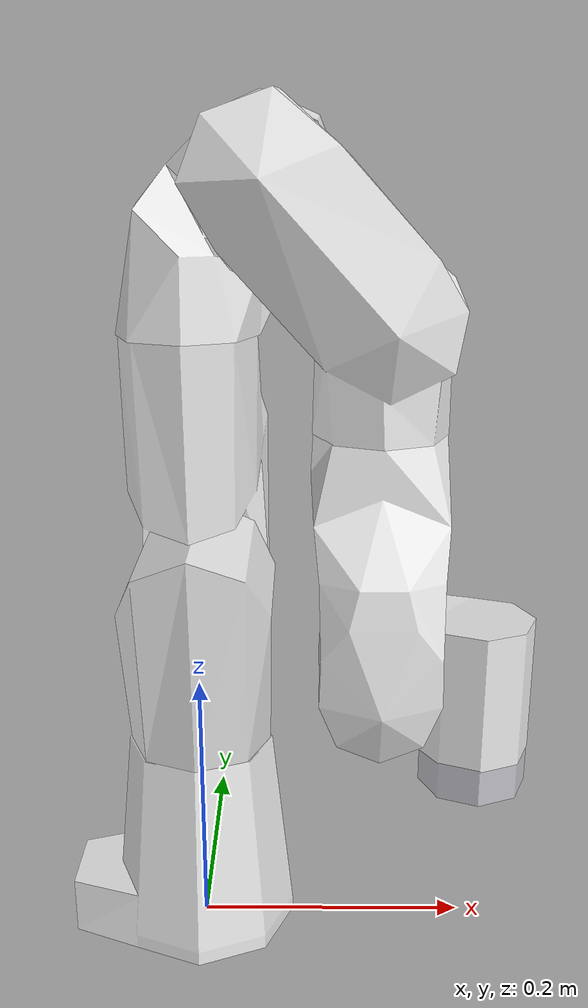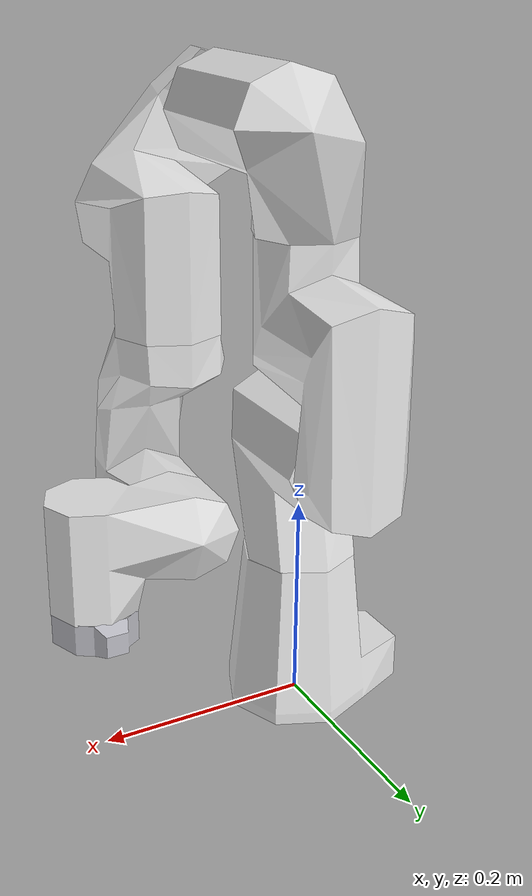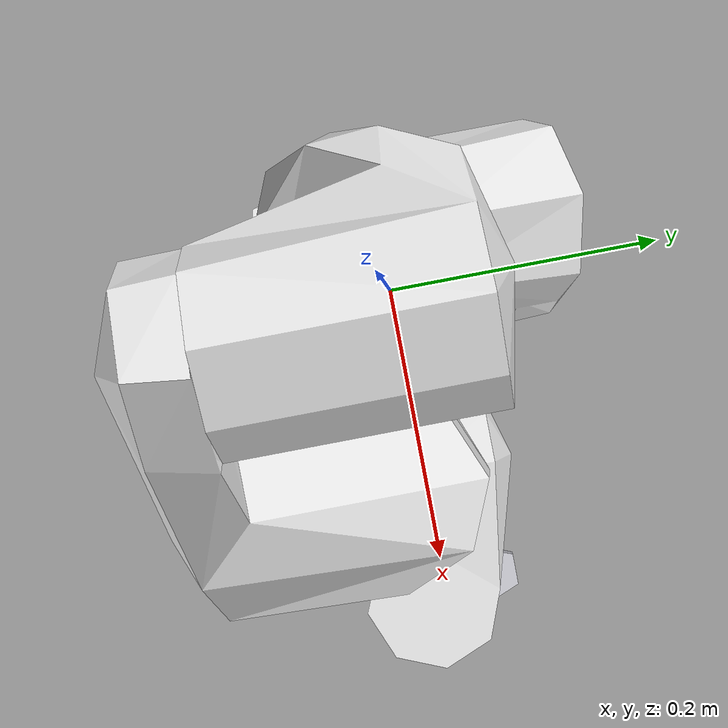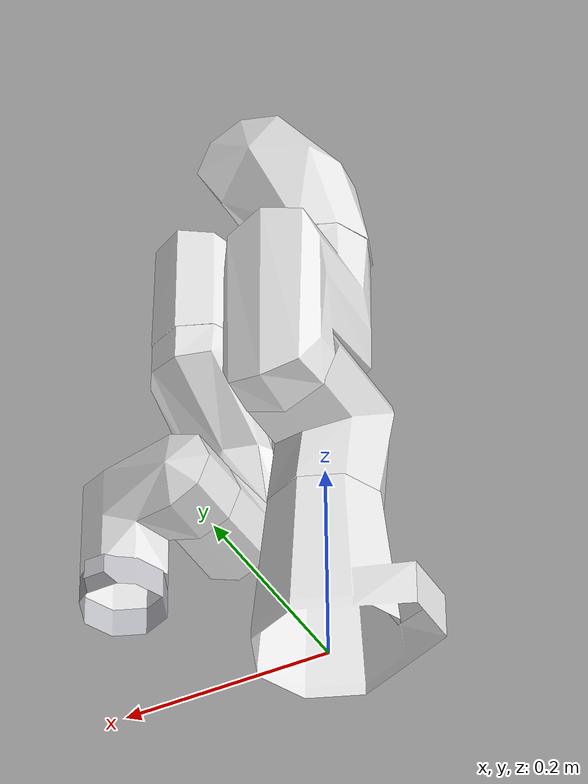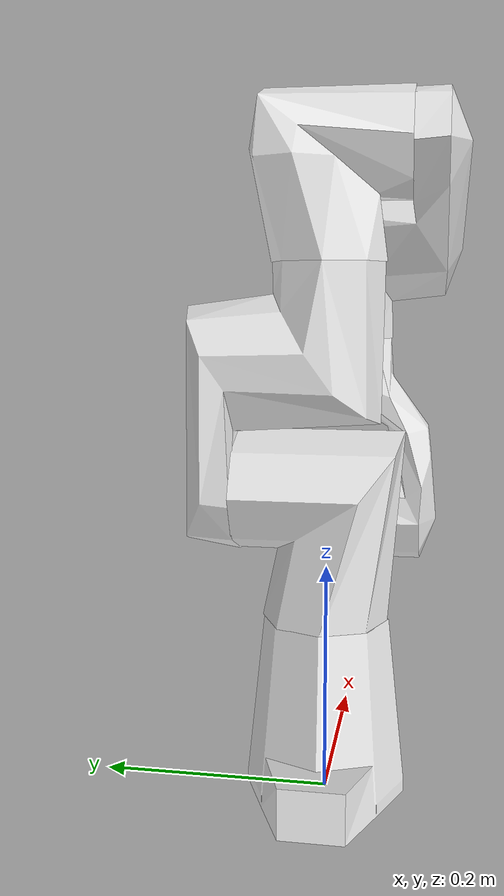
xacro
<?xml version='1.0' encoding='utf-8'?>
<robot xmlns:xacro="http://ros.org/wiki/xacro" name="xarm7">
  <xacro:arg name="prefix" default=""/>
  <xacro:arg name="ros_namespace" default="xarm"/>
  <xacro:arg name="limited" default="false"/>
  <xacro:arg name="effort_control" default="false"/>
  <xacro:arg name="velocity_control" default="false"/>

  <xacro:arg name="add_other_geometry" default="false"/>
  <xacro:arg name="geometry_type" default="box"/>
  <xacro:arg name="geometry_mass" default="0.1"/>
  <xacro:arg name="geometry_height" default="0.1"/>
  <xacro:arg name="geometry_radius" default="0.1"/>
  <xacro:arg name="geometry_length" default="0.1"/>
  <xacro:arg name="geometry_width" default="0.1"/>
  <xacro:arg name="geometry_mesh_filename" default=""/>
  <xacro:arg name="geometry_mesh_origin_xyz" default="0 0 0"/>
  <xacro:arg name="geometry_mesh_origin_rpy" default="0 0 0"/>
  <xacro:arg name="geometry_mesh_tcp_xyz" default="0 0 0"/>
  <xacro:arg name="geometry_mesh_tcp_rpy" default="0 0 0"/>

  <xacro:arg name="add_realsense_d435i" default="false"/>

  <!-- load xarm7 robot -->
  <xacro:include filename="$(find horti_description)/urdf/xarm7_robot_macro.xacro" />
  <xacro:xarm7_robot prefix="$(arg prefix)" namespace="$(arg ros_namespace)" limited="$(arg limited)"
    effort_control="$(arg effort_control)" velocity_control="$(arg velocity_control)"
    rs_d435i="$(arg add_realsense_d435i)"
    add_other_geometry="$(arg add_other_geometry)"
    geometry_type="$(arg geometry_type)" geometry_mass="$(arg geometry_mass)"
    geometry_height="$(arg geometry_height)" geometry_radius="$(arg geometry_radius)"
    geometry_length="$(arg geometry_length)" geometry_width="$(arg geometry_width)"
    geometry_mesh_filename="$(arg geometry_mesh_filename)"
    geometry_mesh_origin_xyz="$(arg geometry_mesh_origin_xyz)" geometry_mesh_origin_rpy="$(arg geometry_mesh_origin_rpy)"
    geometry_mesh_tcp_xyz="$(arg geometry_mesh_tcp_xyz)" geometry_mesh_tcp_rpy="$(arg geometry_mesh_tcp_rpy)" />

</robot>

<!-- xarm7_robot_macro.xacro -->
<robot xmlns:xacro="http://ros.org/wiki/xacro" name="xarm7" >
  <xacro:macro name="xarm7_robot" params="prefix:='' namespace:='xarm' limited:='false' effort_control:='false'
    velocity_control:='false' attach_to:='world' xyz:='0 0 0' rpy:='0 0 0' load_gazebo_plugin:='false' rs_d435i:='false'
    add_other_geometry:='false'
    geometry_type:='box' geometry_mass:='0.1'
    geometry_radius:='0.1' geometry_height:='0.1'
    geometry_length:='0.1' geometry_width:='0.1'
    geometry_mesh_filename:=''
    geometry_mesh_origin_xyz:='0 0 0'
    geometry_mesh_origin_rpy:='0 0 0'
    geometry_mesh_tcp_xyz:='0 0 0'
    geometry_mesh_tcp_rpy:='0 0 0' ">

    <!-- xarm7 -->
    <xacro:include filename="$(find horti_description)/urdf/inc/xarm/xarm7.urdf.xacro" />
    <xacro:include filename="$(find horti_description)/urdf/inc/xarm/xarm7.transmission.xacro" />
    <xacro:include filename="$(find horti_description)/urdf/inc/xarm/xarm7.gazebo.xacro" />

    <!-- gazebo_plugin -->
   <xacro:if value="${load_gazebo_plugin}">
    <xacro:include filename="$(find horti_description)/urdf/common.gazebo.xacro" />
    <xacro:gazebo_ros_control_plugin namespace="${namespace}"/>
    </xacro:if>

    <!-- add one world link if no 'attach_to' specified  -->
    <xacro:if value="${attach_to == 'world'}">
      <link name="world" />
    </xacro:if>

    <joint name="${prefix}world_joint" type="fixed">
      <parent link="${attach_to}" />
      <child link = "${prefix}link_base" />
      <origin xyz="${xyz}" rpy="${rpy}" />
    </joint>

    <xacro:if value="${limited}">
      <xacro:xarm7_urdf prefix="${prefix}"
        joint1_lower_limit="${-pi*0.99}" joint1_upper_limit="${pi*0.99}"
        joint2_lower_limit="${-2.18}" joint2_upper_limit="${2.18}"
        joint3_lower_limit="${-pi*0.99}" joint3_upper_limit="${pi*0.99}"
        joint4_lower_limit="${-0.11}" joint4_upper_limit="${pi*0.99}"
        joint5_lower_limit="${-pi*0.99}" joint5_upper_limit="${pi*0.99}"
        joint6_lower_limit="${-1.75}" joint6_upper_limit="${pi*0.99}"
        joint7_lower_limit="${-pi*0.99}" joint7_upper_limit="${pi*0.99}"
        rs_d435i="${rs_d435i}"/>
    </xacro:if>
    <xacro:unless value="${limited}">
      <xacro:xarm7_urdf prefix="${prefix}" rs_d435i="${rs_d435i}"/>
    </xacro:unless>

    <xacro:xarm7_transmission prefix="${prefix}" hard_interface="$(eval 'EffortJointInterface' if ${effort_control} else 'VelocityJointInterface' if ${velocity_control} else 'PositionJointInterface')" />

    <xacro:xarm7_gazebo prefix="${prefix}" />

    <xacro:if value="${add_other_geometry}">
      <xacro:include filename="$(find horti_description)/urdf/inc/xarm/other_geometry.urdf.xacro" />
      <xacro:other_geometry prefix="${prefix}" attach_to="${prefix}link_eef"
        geometry_type="${geometry_type}" geometry_mass="${geometry_mass}"
        geometry_height="${geometry_height}" geometry_radius="${geometry_radius}"
        geometry_length="${geometry_length}" geometry_width="${geometry_width}"
        geometry_mesh_filename="${geometry_mesh_filename}"
        geometry_mesh_origin_xyz="${geometry_mesh_origin_xyz}" geometry_mesh_origin_rpy="${geometry_mesh_origin_rpy}"
        geometry_mesh_tcp_xyz="${geometry_mesh_tcp_xyz}" geometry_mesh_tcp_rpy="${geometry_mesh_tcp_rpy}"
      />
    </xacro:if>
  </xacro:macro>

</robot>

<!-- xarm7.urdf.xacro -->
<robot xmlns:xacro="http://ros.org/wiki/xacro">

    <xacro:property name="collision_type" value="reduced_mesh_manual_performance" />
    <!-- Values: reduced_mesh_auto, reduced_mesh_manual_quality, reduced_mesh_manual_performance, spheres, shapes, capsules-->

  <xacro:macro name="xarm7_urdf" params="prefix
    joint1_lower_limit:=${-2.0*pi}  joint1_upper_limit:=${2.0*pi}
    joint2_lower_limit:=${-2.059}  joint2_upper_limit:=${2.0944}
    joint3_lower_limit:=${-2.0*pi}  joint3_upper_limit:=${2.0*pi}
    joint4_lower_limit:=${-0.19198}  joint4_upper_limit:=${3.927}
    joint5_lower_limit:=${-2.0*pi}  joint5_upper_limit:=${2.0*pi}
    joint6_lower_limit:=${-1.69297}  joint6_upper_limit:=${pi}
    joint7_lower_limit:=${-2.0*pi}  joint7_upper_limit:=${2.0*pi}
    rs_d435i:=false">

    <link
    name="${prefix}link_base">
    <inertial>
      <origin
        xyz="-0.021131 -0.0016302 0.056488"
        rpy="0 0 0" />
      <mass
        value="2.612" />
      <inertia
        ixx="0.0030595"
        ixy="0.00012259"
        ixz="-0.00062705"
        iyy="0.0037783"
        iyz="0.00027023"
        izz="0.0020125" />
    </inertial>
    <visual>
      <origin
        xyz="0 0 0"
        rpy="0 0 0" />
      <geometry>
        <mesh filename="package://horti_description/meshes/xarm7/visual/link_base.STL" />
      </geometry>
      <material name="White" />
    </visual>

    <xacro:if value="${collision_type == 'reduced_mesh_auto'}">
        <collision>
            <geometry>
                <mesh filename="package://horti_description/meshes/xarm7/collision/link_base_collision.STL" />
            </geometry>
        </collision>
    </xacro:if>

    <xacro:if value="${collision_type == 'reduced_mesh_manual_quality'}">
        <collision>
            <geometry>
                <mesh filename="package://horti_description/meshes/xarm7/collision_manual_quality/link_base_collision.STL" />
            </geometry>
        </collision>
    </xacro:if>

    <xacro:if value="${collision_type == 'reduced_mesh_manual_performance'}">
        <collision>
            <geometry>
                <mesh filename="package://horti_description/meshes/xarm7/collision_manual_performance/link_base_collision.STL" />
            </geometry>
        </collision>
    </xacro:if>

    <xacro:if value="${collision_type == 'spheres'}">
        <collision>
            <origin xyz="0.0 0.0 0.05" rpy="0 0 0" />
            <geometry>
                <sphere radius="0.05"/>
            </geometry>
        </collision>

        <collision>
            <origin xyz="0.0 0.0 0.15" rpy="0 0 0" />
            <geometry>
                <sphere radius="0.05"/>
            </geometry>
        </collision>

        <collision>
            <origin xyz="0.0 0.0 0.25" rpy="0 0 0" />
            <geometry>
                <sphere radius="0.05"/>
            </geometry>
        </collision>
    </xacro:if>

    <xacro:if value="${collision_type == 'shapes'}">
        <collision>
            <origin rpy="0.0 0.0 0.0" xyz="0.0 0.0 0.08" />
            <geometry>
                <cylinder length="0.16" radius="0.07" />
            </geometry>
        </collision>
        <collision>
            <origin rpy="0.0 1.57 0.0" xyz="-0.09 0.0 0.03" />
            <geometry>
                <cylinder length="0.05" radius="0.05" />
            </geometry>
        </collision>
    </xacro:if>

    <xacro:if value="${collision_type == 'capsules'}">
        <xacro:capsule-collision e1="-0.000213989 -2.89319e-05 0.0883932" e2="-0.0129459 0.000484928 0.0317038" rad="0.081895279580145044" len="0.058103800326894536" rpy="-3.13253 -0.220917 3.05991" mid="-0.00657996 0.000227998 0.0600485" />
    </xacro:if>

  </link>
  <link
    name="${prefix}link1">
    <inertial>
      <origin
        xyz="0.00013 0.0301 -0.012"
        rpy="0 0 0" />
      <mass
        value="2.459" />
      <inertia
        ixx="0.005795"
        ixy="-1.078E-05"
        ixz="-2.63E-05"
        iyy="0.004969"
        iyz="0.000911"
        izz="0.003428" />
    </inertial>
    <visual>
      <origin
        xyz="0 0 0"
        rpy="0 0 0" />
      <geometry>
        <mesh
          filename="package://horti_description/meshes/xarm7/visual/link1.STL" />
      </geometry>
      <material name="White" />
    </visual>

    <xacro:if value="${collision_type == 'reduced_mesh_auto'}">
        <collision>
            <geometry>
                <mesh filename="package://horti_description/meshes/xarm7/collision/link1_collision.STL" />
            </geometry>
        </collision>
    </xacro:if>

    <xacro:if value="${collision_type == 'reduced_mesh_manual_quality'}">
        <collision>
            <geometry>
                <mesh filename="package://horti_description/meshes/xarm7/collision_manual_quality/link1_collision.STL" />
            </geometry>
        </collision>
    </xacro:if>

    <xacro:if value="${collision_type == 'reduced_mesh_manual_performance'}">
        <collision>
            <geometry>
                <mesh filename="package://horti_description/meshes/xarm7/collision_manual_performance/link1_collision.STL" />
            </geometry>
        </collision>
    </xacro:if>

    <xacro:if value="${collision_type == 'shapes'}">
        <collision>
            <origin rpy="0.15 0.0 0.0" xyz="0.0 -0.01 -0.05" />
            <geometry>
                <cylinder length="0.14" radius="0.053" />
            </geometry>
        </collision>
        <collision>
            <origin rpy="1.57 0.0 0.0" xyz="0.0 0.01 0.0" />
            <geometry>
                <cylinder length="0.14" radius="0.053" />
            </geometry>
        </collision>
    </xacro:if>

    <xacro:if value="${collision_type == 'capsules'}">
        <xacro:capsule-collision e1="-0.000494258 0.00169954 -0.0559307" e2="-1.82532e-05 0.0171077 8.86826e-05" rad="0.07520456462972773" len="0.058101676815102581" rpy="-0.268414 0.0081927 -0.00110617" mid="-0.000256255 0.00940363 -0.027921" />
    </xacro:if>

  </link>
  <joint
    name="${prefix}joint1"
    type="revolute">
    <origin
      xyz="0 0 0.267"
      rpy="0 0 0" />
    <parent
      link="${prefix}link_base" />
    <child
      link="${prefix}link1" />
    <axis
      xyz="0 0 1" />
    <limit
      lower="${joint1_lower_limit}"
      upper="${joint1_upper_limit}"
      effort="50"
      velocity="3.14" />
    <dynamics
      damping="10"
      friction="1" />
  </joint>
  <link
    name="${prefix}link2">
    <inertial>
      <origin
        xyz="0.0002 -0.12964 0.01692"
        rpy="0 0 0" />
      <mass
        value="1.916" />
      <inertia
        ixx="0.0097184"
        ixy="1.0E-06"
        ixz="-4.83E-06"
        iyy="0.0038705"
        iyz="0.0032"
        izz="0.007672" />
    </inertial>
    <visual>
      <origin
        xyz="0 0 0"
        rpy="0 0 0" />
      <geometry>
        <mesh
          filename="package://horti_description/meshes/xarm7/visual/link2.STL" />
      </geometry>
      <material name="White" />
    </visual>

    <xacro:if value="${collision_type == 'reduced_mesh_auto'}">
        <collision>
            <geometry>
                <mesh filename="package://horti_description/meshes/xarm7/collision/link2_collision.STL" />
            </geometry>
        </collision>
    </xacro:if>

    <xacro:if value="${collision_type == 'reduced_mesh_manual_quality'}">
        <collision>
            <geometry>
                <mesh filename="package://horti_description/meshes/xarm7/collision_manual_quality/link2_collision.STL" />
            </geometry>
        </collision>
    </xacro:if>

    <xacro:if value="${collision_type == 'reduced_mesh_manual_performance'}">
        <collision>
            <geometry>
                <mesh filename="package://horti_description/meshes/xarm7/collision_manual_performance/link2_collision.STL" />
            </geometry>
        </collision>
    </xacro:if>

    <xacro:if value="${collision_type == 'spheres'}">
        <collision>
            <origin xyz="0.0 -0.1 0.08" rpy="0 0 0" />
            <geometry>
                <sphere radius="0.05"/>
            </geometry>
        </collision>

        <collision>
            <origin xyz="0.0 0.0 0.08" rpy="0 0 0" />
            <geometry>
                <sphere radius="0.05"/>
            </geometry>
        </collision>
    </xacro:if>

    <xacro:if value="${collision_type == 'shapes'}">
        <collision>
            <origin rpy="1.57 0.0 0.0" xyz="0.0 -0.135 0.0" />
            <geometry>
                <cylinder length="0.12" radius="0.048" />
            </geometry>
        </collision>
        <collision>
            <origin rpy="0.0 0.0 0.0" xyz="0.0 -0.11 0.038" />
            <geometry>
                <cylinder length="0.168" radius="0.053" />
            </geometry>
        </collision>
        <collision>
            <origin rpy="0.0 0.0 0.0" xyz="0.0 -0.05 0.1" />
            <geometry>
                <box size="0.102 0.12 0.045" />
            </geometry>
        </collision>
        <collision>
            <origin rpy="0.0 0.0 0.0" xyz="0.0 0.0 0.098" />
            <geometry>
                <cylinder length="0.048" radius="0.05" />
            </geometry>
        </collision>
    </xacro:if>

    <xacro:if value="${collision_type == 'capsules'}">
        <xacro:capsule-collision e1="-3.45385e-05 -0.139089 0.0179407" e2="-0.000544098 -0.0320002 0.0843023" rad="0.079891635947292372" len="0.12598468896291548" rpy="-1.01603 -0.00404463 0.00225186" mid="-0.000289318 -0.0855446 0.0511215" />
    </xacro:if>

  </link>
  <joint
    name="${prefix}joint2"
    type="revolute">
    <origin
      xyz="0 0 0"
      rpy="-1.5708 0 0" />
    <parent
      link="${prefix}link1" />
    <child
      link="${prefix}link2" />
    <axis
      xyz="0 0 1" />
    <limit
      lower="${joint2_lower_limit}"
      upper="${joint2_upper_limit}"
      effort="50"
      velocity="3.14" />
    <dynamics
      damping="10"
      friction="1" />
  </joint>
  <link
    name="${prefix}link3">
    <inertial>
      <origin
        xyz="0.04676 -0.02526 -0.00746"
        rpy="0 0 0" />
      <mass
        value="1.6854" />
      <inertia
        ixx="0.0031588"
        ixy="-3.1443E-04"
        ixz="5.8658E-04"
        iyy="0.002682"
        iyz="-3.469E-04"
        izz="0.0027105" />
    </inertial>
    <visual>
      <origin
        xyz="0 0 0"
        rpy="0 0 0" />
      <geometry>
        <mesh
          filename="package://horti_description/meshes/xarm7/visual/link3.STL" />
      </geometry>
      <material name="White" />
    </visual>

    <xacro:if value="${collision_type == 'reduced_mesh_auto'}">
        <collision>
            <geometry>
                <mesh filename="package://horti_description/meshes/xarm7/collision/link3_collision.STL" />
            </geometry>
        </collision>
    </xacro:if>

    <xacro:if value="${collision_type == 'reduced_mesh_manual_quality'}">
        <collision>
            <geometry>
                <mesh filename="package://horti_description/meshes/xarm7/collision_manual_quality/link3_collision.STL" />
            </geometry>
        </collision>
    </xacro:if>

    <xacro:if value="${collision_type == 'reduced_mesh_manual_performance'}">
        <collision>
            <geometry>
                <mesh filename="package://horti_description/meshes/xarm7/collision_manual_performance/link3_collision.STL" />
            </geometry>
        </collision>
    </xacro:if>

    <xacro:if value="${collision_type == 'shapes'}">
        <collision>
            <origin rpy="-0.5 0.5 0.0" xyz="0.022 0.022 -0.019" />
            <geometry>
                <cylinder length="0.1" radius="0.0545" />
            </geometry>
        </collision>
        <collision>
            <origin rpy="1.57 0.0 0.0" xyz="0.055 0.005 0.0" />
            <geometry>
                <cylinder length="0.145" radius="0.05" />
            </geometry>
        </collision>
        <collision>
            <origin rpy="0.0 0.0 0.0" xyz="0.0 0.0 -0.063" />
            <geometry>
                <cylinder length="0.077" radius="0.051" />
            </geometry>
        </collision>
    </xacro:if>

    <xacro:if value="${collision_type == 'capsules'}">
        <xacro:capsule-collision e1="0.00923538 0.00384423 -0.0459849" e2="0.0519698 -0.00416959 6.54929e-05" rad="0.076142510102971253" len="0.063333148338168666" rpy="0.172298 0.740634 0.0670316" mid="0.0306026 -0.000162679 -0.0229597" />
    </xacro:if>

  </link>
  <joint
    name="${prefix}joint3"
    type="revolute">
    <origin
      xyz="0 -0.293 0"
      rpy="1.5708 0 0" />
    <parent
      link="${prefix}link2" />
    <child
      link="${prefix}link3" />
    <axis
      xyz="0 0 1" />
    <limit
      lower="${joint3_lower_limit}"
      upper="${joint3_upper_limit}"
      effort="30"
      velocity="3.14" />
    <dynamics
      damping="5"
      friction="1" />
  </joint>
  <link
    name="${prefix}link4">
    <inertial>
      <origin
        xyz="0.07066 -0.11664 0.0117"
        rpy="0 0 0" />
      <mass
        value="1.774" />
      <inertia
        ixx="0.005967"
        ixy="-0.001382"
        ixz="-0.00088544"
        iyy="0.00363897"
        iyz="0.0017806"
        izz="0.005509226" />
    </inertial>
    <visual>
      <origin
        xyz="0 0 0"
        rpy="0 0 0" />
      <geometry>
        <mesh
          filename="package://horti_description/meshes/xarm7/visual/link4.STL" />
      </geometry>
      <material name="White" />
    </visual>

    <xacro:if value="${collision_type == 'reduced_mesh_auto'}">
        <collision>
            <geometry>
                <mesh filename="package://horti_description/meshes/xarm7/collision/link4_collision.STL" />
            </geometry>
        </collision>
    </xacro:if>

    <xacro:if value="${collision_type == 'reduced_mesh_manual_quality'}">
        <collision>
            <geometry>
                <mesh filename="package://horti_description/meshes/xarm7/collision_manual_quality/link4_collision.STL" />
            </geometry>
        </collision>
    </xacro:if>

    <xacro:if value="${collision_type == 'reduced_mesh_manual_performance'}">
        <collision>
            <geometry>
                <mesh filename="package://horti_description/meshes/xarm7/collision_manual_performance/link4_collision.STL" />
            </geometry>
        </collision>
    </xacro:if>

    <xacro:if value="${collision_type == 'shapes'}">
        <collision>
            <origin rpy="1.57 0.0 0.0" xyz="0.077 -0.115 0.0" />
            <geometry>
                <cylinder length="0.115" radius="0.048" />
            </geometry>
        </collision>
        <collision>
            <origin rpy="0.0 0.0 0.0" xyz="0.077 -0.08 0.034" />
            <geometry>
                <cylinder length="0.158" radius="0.05" />
            </geometry>
        </collision>
        <collision>
            <origin rpy="0.0 0.0 0.0" xyz="0.0 0.0 0.09" />
            <geometry>
                <cylinder length="0.05" radius="0.048" />
            </geometry>
        </collision>
        <collision>
            <origin rpy="0.0 0.0 0.74" xyz="0.0385 -0.0415 0.09" />
            <geometry>
                <box size="0.095 0.1 0.05" />
            </geometry>
        </collision>
    </xacro:if>

    <xacro:if value="${collision_type == 'capsules'}">
        <xacro:capsule-collision e1="0.0237917 -0.0187988 0.082206" e2="0.0852515 -0.117879 0.0100891" rad="0.07499443307953356" len="0.13709514886780519" rpy="2.19998 0.464863 0.870623" mid="0.0545216 -0.068339 0.0461475" />
    </xacro:if>

  </link>
  <joint
    name="${prefix}joint4"
    type="revolute">
    <origin
      xyz="0.0525 0 0"
      rpy="1.5708 0 0" />
    <parent
      link="${prefix}link3" />
    <child
      link="${prefix}link4" />
    <axis
      xyz="0 0 1" />
    <limit
      lower="${joint4_lower_limit}"
      upper="${joint4_upper_limit}"
      effort="30"
      velocity="3.14" />
    <dynamics
      damping="5"
      friction="1" />
  </joint>
  <link
    name="${prefix}link5">
    <inertial>
      <origin
        xyz="-0.00031 0.01558 -0.0253"
        rpy="0 0 0" />
      <mass
        value="1.357" />
      <inertia
        ixx="0.005396"
        ixy="-1.53E-05"
        ixz="-6.7E-07"
        iyy="0.005"
        iyz="0.00020544"
        izz="0.00138734" />
    </inertial>
    <visual>
      <origin
        xyz="0 0 0"
        rpy="0 0 0" />
      <geometry>
        <mesh
          filename="package://horti_description/meshes/xarm7/visual/link5.STL" />
      </geometry>
      <material name="White" />
    </visual>

    <xacro:if value="${collision_type == 'reduced_mesh_auto'}">
        <collision>
            <geometry>
                <mesh filename="package://horti_description/meshes/xarm7/collision/link5_collision.STL" />
            </geometry>
        </collision>
    </xacro:if>

    <xacro:if value="${collision_type == 'reduced_mesh_manual_quality'}">
        <collision>
            <geometry>
                <mesh filename="package://horti_description/meshes/xarm7/collision_manual_quality/link5_collision.STL" />
            </geometry>
        </collision>
    </xacro:if>

    <xacro:if value="${collision_type == 'reduced_mesh_manual_performance'}">
        <collision>
            <geometry>
                <mesh filename="package://horti_description/meshes/xarm7/collision_manual_performance/link5_collision.STL" />
            </geometry>
        </collision>
    </xacro:if>

    <xacro:if value="${collision_type == 'spheres'}">
        <collision>
            <origin xyz="0.0 0.05 0.0" rpy="0 0 0" />
            <geometry>
                <sphere radius="0.04"/>
            </geometry>
        </collision>

        <collision>
            <origin xyz="0.0 0.04 -0.08" rpy="0 0 0" />
            <geometry>
                <sphere radius="0.04"/>
            </geometry>
        </collision>
    </xacro:if>

    <xacro:if value="${collision_type == 'shapes'}">
        <collision>
            <origin rpy="0.0 0.0 0.0" xyz="0.0 0.0 -0.15" />
            <geometry>
                <cylinder length="0.045" radius="0.05" />
            </geometry>
        </collision>
        <collision>
            <origin rpy="1.57 0.0 0.0" xyz="0.0 0.047 0.0" />
            <geometry>
                <cylinder length="0.09" radius="0.04" />
            </geometry>
        </collision>
        <collision>
            <origin rpy="-1.05 0.0 0.0" xyz="0.0 0.0285 -0.122" />
            <geometry>
                <box size="0.095 0.052 0.1" />
            </geometry>
        </collision>
        <collision>
            <origin rpy="-0.11 0.0 0.0" xyz="0.0 0.069 -0.065" />
            <geometry>
                <box size="0.085 0.04 0.1" />
            </geometry>
        </collision>
    </xacro:if>

    <xacro:if value="${collision_type == 'capsules'}">
        <xacro:capsule-collision e1="-5.45282e-06 0.0461016 -4.23804e-05" e2="-0.000793873 0.00857662 -0.149905" rad="0.055896945982555783" len="0.15449161327345248" rpy="2.89624 -0.00510334 -0.0413857" mid="-0.000399663 0.0273391 -0.0749739" />
    </xacro:if>

  </link>
  <joint
    name="${prefix}joint5"
    type="revolute">
    <origin
      xyz="0.0775 -0.3425 0"
      rpy="1.5708 0 0" />
    <parent
      link="${prefix}link4" />
    <child
      link="${prefix}link5" />
    <axis
      xyz="0 0 1" />
    <limit
      lower="${joint5_lower_limit}"
      upper="${joint5_upper_limit}"
      effort="30"
      velocity="3.14" />
    <dynamics
      damping="5"
      friction="1" />
  </joint>
  <link
    name="${prefix}link6">
    <inertial>
      <origin
        xyz="0.065 0.03336 0.02131"
        rpy="0 0 0" />
      <mass
        value="1.362" />
      <inertia
        ixx="0.0015057"
        ixy="0.000496735"
        ixz="-2.9968E-04"
        iyy="0.0019297"
        iyz="-1.5E-04"
        izz="0.0024" />
    </inertial>
    <visual>
      <origin
        xyz="0 0 0"
        rpy="0 0 0" />
      <geometry>
        <mesh
          filename="package://horti_description/meshes/xarm7/visual/link6.STL" />
      </geometry>
      <material name="White" />
    </visual>

    <xacro:if value="${collision_type == 'reduced_mesh_auto'}">
        <collision>
            <geometry>
                <mesh filename="package://horti_description/meshes/xarm7/collision/link6_collision.STL" />
            </geometry>
        </collision>
    </xacro:if>

    <xacro:if value="${collision_type == 'reduced_mesh_manual_quality'}">
        <collision>
            <geometry>
                <mesh filename="package://horti_description/meshes/xarm7/collision_manual_quality/link6_collision.STL" />
            </geometry>
        </collision>
    </xacro:if>

    <xacro:if value="${collision_type == 'reduced_mesh_manual_performance'}">
        <collision>
            <geometry>
                <mesh filename="package://horti_description/meshes/xarm7/collision_manual_performance/link6_collision.STL" />
            </geometry>
        </collision>
    </xacro:if>

    <xacro:if value="${collision_type == 'spheres'}">
        <collision>
            <origin xyz="0.0 0.0 0.01" rpy="0 0 0" />
            <geometry>
                <sphere radius="0.04"/>
            </geometry>
        </collision>

        <collision>
            <origin xyz="0.08 0.0 0.01" rpy="0 0 0" />
            <geometry>
                <sphere radius="0.04"/>
            </geometry>
        </collision>
    </xacro:if>

    <xacro:if value="${collision_type == 'shapes'}">
        <collision>
            <origin rpy="0.0 0.0 0.0" xyz="0.0 0.0 0.026" />
            <geometry>
                <cylinder length="0.07" radius="0.04" />
            </geometry>
        </collision>
        <collision>
            <origin rpy="1.57 0.0 0.0" xyz="0.076 0.017 0.0" />
            <geometry>
                <cylinder length="0.105" radius="0.04" />
            </geometry>
        </collision>
        <collision>
            <origin rpy="0.0 0.25 0.0" xyz="0.04 0.0 0.018" />
            <geometry>
                <box size="0.063 0.078 0.06" />
            </geometry>
        </collision>
    </xacro:if>

    <xacro:if value="${collision_type == 'capsules'}">
        <xacro:capsule-collision e1="0.0111499 0.000183831 0.0324818" e2="0.0764099 0.0203825 2.84729e-05" rad="0.061231144058150992" len="0.075631202198171668" rpy="-2.58487 1.04092 -2.21655" mid="0.0437799 0.0102832 0.0162552" />
    </xacro:if>

  </link>
  <joint
    name="${prefix}joint6"
    type="revolute">
    <origin
      xyz="0 0 0"
      rpy="1.5708 0 0" />
    <parent
      link="${prefix}link5" />
    <child
      link="${prefix}link6" />
    <axis
      xyz="0 0 1" />
    <limit
      lower="${joint6_lower_limit}"
      upper="${joint6_upper_limit}"
      effort="20"
      velocity="3.14" />
    <dynamics
      damping="2"
      friction="1" />
  </joint>
  <link
    name="${prefix}link7">
    <inertial>
      <origin
        xyz="0 -0.00677 -0.01098"
        rpy="0 0 0" />
      <mass
        value="0.17" />
      <inertia
        ixx="9.3E-05"
        ixy="0.0"
        ixz="0.0"
        iyy="5.87E-05"
        iyz="3.6E-06"
        izz="1.32E-04" />
    </inertial>
    <visual>
      <origin
        xyz="0 0 0"
        rpy="0 0 0" />
      <geometry>
        <mesh
          filename="package://horti_description/meshes/xarm7/visual/link7.STL" />
      </geometry>
      <material name="Silver" />
    </visual>

    <xacro:if value="${collision_type == 'reduced_mesh_auto'}">
        <collision>
            <origin xyz="0.0 0.0 0.0" rpy="0 0 0" />
            <geometry>
                <sphere radius="0.05"/>
            </geometry>
        </collision>
    </xacro:if>

    <xacro:if value="${collision_type == 'reduced_mesh_manual_quality'}">
        <collision>
            <geometry>
                <mesh filename="package://horti_description/meshes/xarm7/collision_manual_quality/link7_collision.STL" />
            </geometry>
        </collision>
    </xacro:if>

    <xacro:if value="${collision_type == 'reduced_mesh_manual_performance'}">
        <collision>
            <geometry>
                <mesh filename="package://horti_description/meshes/xarm7/collision_manual_performance/link7_collision.STL" />
            </geometry>
        </collision>
    </xacro:if>

    <xacro:if value="${collision_type == 'shapes'}">
        <collision>
            <origin rpy="0.0 0.0 0.0" xyz="0.0 0.0 -0.014" />
            <geometry>
                <cylinder length="0.032" radius="0.04" />
            </geometry>
        </collision>
        <collision>
            <origin rpy="1.57 0.0 0.0" xyz="0.0 -0.045 -0.014" />
            <geometry>
                <cylinder length="0.02" radius="0.017" />
            </geometry>
        </collision>
    </xacro:if>

    <xacro:if value="${collision_type == 'capsules'}">
        <xacro:capsule-collision e1="-3.36121e-05 0.00432082 -0.0135414" e2="7.3351e-05 -0.0128869 -0.013647" rad="0.043332136325713658" len="0.017208420106763666" rpy="1.57693 0.00621578 0.00625404" mid="1.98694e-05 -0.00428306 -0.0135942" />
    </xacro:if>

  </link>
  <joint
    name="${prefix}joint7"
    type="revolute">
    <origin
      xyz="0.076 0.097 0"
      rpy="-1.5708 0 0" />
    <parent
      link="${prefix}link6" />
    <child
      link="${prefix}link7" />
    <axis
      xyz="0 0 1" />
    <limit
      lower="${joint7_lower_limit}"
      upper="${joint7_upper_limit}"
      effort="20"
      velocity="3.14" />
    <dynamics
      damping="2"
      friction="1" />
  </joint>

  </xacro:macro>
</robot>
